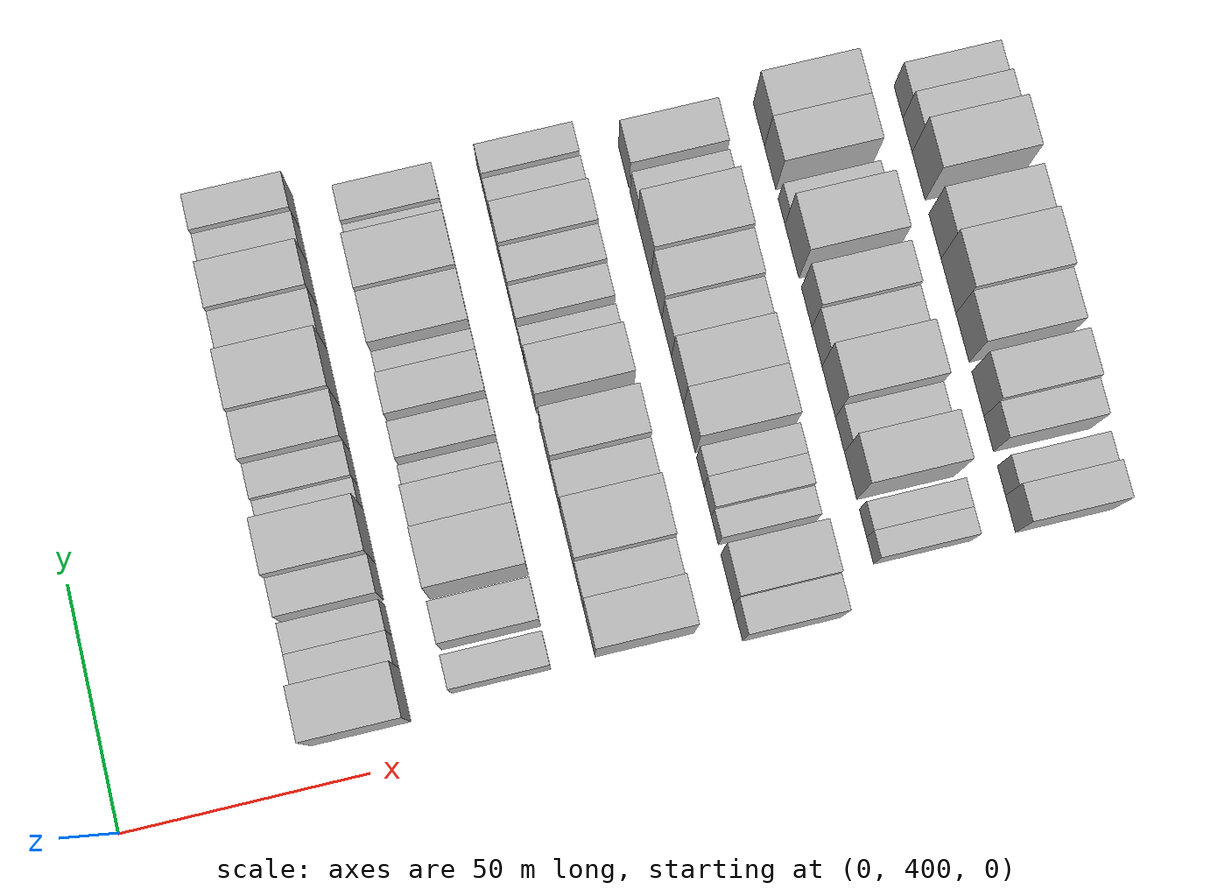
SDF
<sdf version="1.6">
 <world name="default">
  <model name="building_113">
   <static>1</static>
   <pose>50.0000 413.2900 0 0.000000 0.000000 0.000000</pose>
   <link name="link">
    <pose>0 0 12.00 0 0 0</pose>
    <collision name="collision"><geometry><box><size>20.0000 10.7970 24.0000</size></box></geometry></collision>
    <visual name="visual">
     <cast_shadows>0</cast_shadows>
     <geometry><box><size>20.0000 10.7970 24.0000</size></box></geometry>
     <material>
      <script>
       <uri>model://HANNAS_wall/materials/scripts</uri>
       <uri>model://HANNAS_wall/materials/textures</uri>
       <name>vrc/HANNAS_wall</name>
      </script>
     </material>
    </visual>
   </link>
  </model>
  <model name="building_114">
   <static>1</static>
   <pose>50.0000 421.9592 0 0.000000 0.000000 0.000000</pose>
   <link name="link">
    <pose>0 0 7.50 0 0 0</pose>
    <collision name="collision"><geometry><box><size>20.0000 6.5415 15.0000</size></box></geometry></collision>
    <visual name="visual">
     <cast_shadows>0</cast_shadows>
     <geometry><box><size>20.0000 6.5415 15.0000</size></box></geometry>
     <material>
      <script>
       <uri>model://HANNAS_wall/materials/scripts</uri>
       <uri>model://HANNAS_wall/materials/textures</uri>
       <name>vrc/HANNAS_wall</name>
      </script>
     </material>
    </visual>
   </link>
  </model>
  <model name="building_115">
   <static>1</static>
   <pose>50.0000 428.2817 0 0.000000 0.000000 0.000000</pose>
   <link name="link">
    <pose>0 0 7.50 0 0 0</pose>
    <collision name="collision"><geometry><box><size>20.0000 6.1034 15.0000</size></box></geometry></collision>
    <visual name="visual">
     <cast_shadows>0</cast_shadows>
     <geometry><box><size>20.0000 6.1034 15.0000</size></box></geometry>
     <material>
      <script>
       <uri>model://HANNAS_wall/materials/scripts</uri>
       <uri>model://HANNAS_wall/materials/textures</uri>
       <name>vrc/HANNAS_wall</name>
      </script>
     </material>
    </visual>
   </link>
  </model>
  <model name="building_116">
   <static>1</static>
   <pose>50.0000 436.1380 0 0.000000 0.000000 0.000000</pose>
   <link name="link">
    <pose>0 0 9.00 0 0 0</pose>
    <collision name="collision"><geometry><box><size>20.0000 7.6092 18.0000</size></box></geometry></collision>
    <visual name="visual">
     <cast_shadows>0</cast_shadows>
     <geometry><box><size>20.0000 7.6092 18.0000</size></box></geometry>
     <material>
      <script>
       <uri>model://HANNAS_wall/materials/scripts</uri>
       <uri>model://HANNAS_wall/materials/textures</uri>
       <name>vrc/HANNAS_wall</name>
      </script>
     </material>
    </visual>
   </link>
  </model>
  <model name="building_117">
   <static>1</static>
   <pose>50.0000 445.4954 0 0.000000 0.000000 0.000000</pose>
   <link name="link">
    <pose>0 0 12.00 0 0 0</pose>
    <collision name="collision"><geometry><box><size>20.0000 11.1056 24.0000</size></box></geometry></collision>
    <visual name="visual">
     <cast_shadows>0</cast_shadows>
     <geometry><box><size>20.0000 11.1056 24.0000</size></box></geometry>
     <material>
      <script>
       <uri>model://HANNAS_wall/materials/scripts</uri>
       <uri>model://HANNAS_wall/materials/textures</uri>
       <name>vrc/HANNAS_wall</name>
      </script>
     </material>
    </visual>
   </link>
  </model>
  <model name="building_118">
   <static>1</static>
   <pose>50.0000 453.4965 0 0.000000 0.000000 0.000000</pose>
   <link name="link">
    <pose>0 0 6.00 0 0 0</pose>
    <collision name="collision"><geometry><box><size>20.0000 4.8966 12.0000</size></box></geometry></collision>
    <visual name="visual">
     <cast_shadows>0</cast_shadows>
     <geometry><box><size>20.0000 4.8966 12.0000</size></box></geometry>
     <material>
      <script>
       <uri>model://HANNAS_wall/materials/scripts</uri>
       <uri>model://HANNAS_wall/materials/textures</uri>
       <name>vrc/HANNAS_wall</name>
      </script>
     </material>
    </visual>
   </link>
  </model>
  <model name="building_119">
   <static>1</static>
   <pose>50.0000 459.4346 0 0.000000 0.000000 0.000000</pose>
   <link name="link">
    <pose>0 0 7.50 0 0 0</pose>
    <collision name="collision"><geometry><box><size>20.0000 6.9797 15.0000</size></box></geometry></collision>
    <visual name="visual">
     <cast_shadows>0</cast_shadows>
     <geometry><box><size>20.0000 6.9797 15.0000</size></box></geometry>
     <material>
      <script>
       <uri>model://HANNAS_wall/materials/scripts</uri>
       <uri>model://HANNAS_wall/materials/textures</uri>
       <name>vrc/HANNAS_wall</name>
      </script>
     </material>
    </visual>
   </link>
  </model>
  <model name="building_120">
   <static>1</static>
   <pose>50.0000 467.6196 0 0.000000 0.000000 0.000000</pose>
   <link name="link">
    <pose>0 0 10.50 0 0 0</pose>
    <collision name="collision"><geometry><box><size>20.0000 9.3903 21.0000</size></box></geometry></collision>
    <visual name="visual">
     <cast_shadows>0</cast_shadows>
     <geometry><box><size>20.0000 9.3903 21.0000</size></box></geometry>
     <material>
      <script>
       <uri>model://HANNAS_wall/materials/scripts</uri>
       <uri>model://HANNAS_wall/materials/textures</uri>
       <name>vrc/HANNAS_wall</name>
      </script>
     </material>
    </visual>
   </link>
  </model>
  <model name="building_121">
   <static>1</static>
   <pose>50.0000 478.3112 0 0.000000 0.000000 0.000000</pose>
   <link name="link">
    <pose>0 0 12.00 0 0 0</pose>
    <collision name="collision"><geometry><box><size>20.0000 11.9928 24.0000</size></box></geometry></collision>
    <visual name="visual">
     <cast_shadows>0</cast_shadows>
     <geometry><box><size>20.0000 11.9928 24.0000</size></box></geometry>
     <material>
      <script>
       <uri>model://HANNAS_wall/materials/scripts</uri>
       <uri>model://HANNAS_wall/materials/textures</uri>
       <name>vrc/HANNAS_wall</name>
      </script>
     </material>
    </visual>
   </link>
  </model>
  <model name="building_122">
   <static>1</static>
   <pose>50.0000 488.7635 0 0.000000 0.000000 0.000000</pose>
   <link name="link">
    <pose>0 0 9.00 0 0 0</pose>
    <collision name="collision"><geometry><box><size>20.0000 8.9117 18.0000</size></box></geometry></collision>
    <visual name="visual">
     <cast_shadows>0</cast_shadows>
     <geometry><box><size>20.0000 8.9117 18.0000</size></box></geometry>
     <material>
      <script>
       <uri>model://HANNAS_wall/materials/scripts</uri>
       <uri>model://HANNAS_wall/materials/textures</uri>
       <name>vrc/HANNAS_wall</name>
      </script>
     </material>
    </visual>
   </link>
  </model>
  <model name="building_123">
   <static>1</static>
   <pose>50.0000 497.8939 0 0.000000 0.000000 0.000000</pose>
   <link name="link">
    <pose>0 0 10.50 0 0 0</pose>
    <collision name="collision"><geometry><box><size>20.0000 9.3491 21.0000</size></box></geometry></collision>
    <visual name="visual">
     <cast_shadows>0</cast_shadows>
     <geometry><box><size>20.0000 9.3491 21.0000</size></box></geometry>
     <material>
      <script>
       <uri>model://HANNAS_wall/materials/scripts</uri>
       <uri>model://HANNAS_wall/materials/textures</uri>
       <name>vrc/HANNAS_wall</name>
      </script>
     </material>
    </visual>
   </link>
  </model>
  <model name="building_124">
   <static>1</static>
   <pose>50.0000 506.1983 0 0.000000 0.000000 0.000000</pose>
   <link name="link">
    <pose>0 0 7.50 0 0 0</pose>
    <collision name="collision"><geometry><box><size>20.0000 7.2597 15.0000</size></box></geometry></collision>
    <visual name="visual">
     <cast_shadows>0</cast_shadows>
     <geometry><box><size>20.0000 7.2597 15.0000</size></box></geometry>
     <material>
      <script>
       <uri>model://HANNAS_wall/materials/scripts</uri>
       <uri>model://HANNAS_wall/materials/textures</uri>
       <name>vrc/HANNAS_wall</name>
      </script>
     </material>
    </visual>
   </link>
  </model>
  <model name="building_125">
   <static>1</static>
   <pose>50.0000 513.5144 0 0.000000 0.000000 0.000000</pose>
   <link name="link">
    <pose>0 0 9.00 0 0 0</pose>
    <collision name="collision"><geometry><box><size>20.0000 7.3724 18.0000</size></box></geometry></collision>
    <visual name="visual">
     <cast_shadows>0</cast_shadows>
     <geometry><box><size>20.0000 7.3724 18.0000</size></box></geometry>
     <material>
      <script>
       <uri>model://HANNAS_wall/materials/scripts</uri>
       <uri>model://HANNAS_wall/materials/textures</uri>
       <name>vrc/HANNAS_wall</name>
      </script>
     </material>
    </visual>
   </link>
  </model>
  <model name="building_228">
   <static>1</static>
   <pose>79.0000 414.7959 0 0.000000 0.000000 0.000000</pose>
   <link name="link">
    <pose>0 0 7.50 0 0 0</pose>
    <collision name="collision"><geometry><box><size>20.0000 6.7253 15.0000</size></box></geometry></collision>
    <visual name="visual">
     <cast_shadows>0</cast_shadows>
     <geometry><box><size>20.0000 6.7253 15.0000</size></box></geometry>
     <material>
      <script>
       <uri>model://HANNAS_wall/materials/scripts</uri>
       <uri>model://HANNAS_wall/materials/textures</uri>
       <name>vrc/HANNAS_wall</name>
      </script>
     </material>
    </visual>
   </link>
  </model>
  <model name="building_229">
   <static>1</static>
   <pose>79.0000 424.3083 0 0.000000 0.000000 0.000000</pose>
   <link name="link">
    <pose>0 0 9.00 0 0 0</pose>
    <collision name="collision"><geometry><box><size>20.0000 8.2994 18.0000</size></box></geometry></collision>
    <visual name="visual">
     <cast_shadows>0</cast_shadows>
     <geometry><box><size>20.0000 8.2994 18.0000</size></box></geometry>
     <material>
      <script>
       <uri>model://HANNAS_wall/materials/scripts</uri>
       <uri>model://HANNAS_wall/materials/textures</uri>
       <name>vrc/HANNAS_wall</name>
      </script>
     </material>
    </visual>
   </link>
  </model>
  <model name="building_230">
   <static>1</static>
   <pose>79.0000 436.4191 0 0.000000 0.000000 0.000000</pose>
   <link name="link">
    <pose>0 0 12.00 0 0 0</pose>
    <collision name="collision"><geometry><box><size>20.0000 11.9222 24.0000</size></box></geometry></collision>
    <visual name="visual">
     <cast_shadows>0</cast_shadows>
     <geometry><box><size>20.0000 11.9222 24.0000</size></box></geometry>
     <material>
      <script>
       <uri>model://HANNAS_wall/materials/scripts</uri>
       <uri>model://HANNAS_wall/materials/textures</uri>
       <name>vrc/HANNAS_wall</name>
      </script>
     </material>
    </visual>
   </link>
  </model>
  <model name="building_231">
   <static>1</static>
   <pose>79.0000 446.6484 0 0.000000 0.000000 0.000000</pose>
   <link name="link">
    <pose>0 0 10.50 0 0 0</pose>
    <collision name="collision"><geometry><box><size>20.0000 8.5364 21.0000</size></box></geometry></collision>
    <visual name="visual">
     <cast_shadows>0</cast_shadows>
     <geometry><box><size>20.0000 8.5364 21.0000</size></box></geometry>
     <material>
      <script>
       <uri>model://HANNAS_wall/materials/scripts</uri>
       <uri>model://HANNAS_wall/materials/textures</uri>
       <name>vrc/HANNAS_wall</name>
      </script>
     </material>
    </visual>
   </link>
  </model>
  <model name="building_232">
   <static>1</static>
   <pose>79.0000 453.5274 0 0.000000 0.000000 0.000000</pose>
   <link name="link">
    <pose>0 0 6.00 0 0 0</pose>
    <collision name="collision"><geometry><box><size>20.0000 5.2216 12.0000</size></box></geometry></collision>
    <visual name="visual">
     <cast_shadows>0</cast_shadows>
     <geometry><box><size>20.0000 5.2216 12.0000</size></box></geometry>
     <material>
      <script>
       <uri>model://HANNAS_wall/materials/scripts</uri>
       <uri>model://HANNAS_wall/materials/textures</uri>
       <name>vrc/HANNAS_wall</name>
      </script>
     </material>
    </visual>
   </link>
  </model>
  <model name="building_233">
   <static>1</static>
   <pose>79.0000 460.8180 0 0.000000 0.000000 0.000000</pose>
   <link name="link">
    <pose>0 0 7.50 0 0 0</pose>
    <collision name="collision"><geometry><box><size>20.0000 7.3597 15.0000</size></box></geometry></collision>
    <visual name="visual">
     <cast_shadows>0</cast_shadows>
     <geometry><box><size>20.0000 7.3597 15.0000</size></box></geometry>
     <material>
      <script>
       <uri>model://HANNAS_wall/materials/scripts</uri>
       <uri>model://HANNAS_wall/materials/textures</uri>
       <name>vrc/HANNAS_wall</name>
      </script>
     </material>
    </visual>
   </link>
  </model>
  <model name="building_234">
   <static>1</static>
   <pose>79.0000 469.6686 0 0.000000 0.000000 0.000000</pose>
   <link name="link">
    <pose>0 0 9.00 0 0 0</pose>
    <collision name="collision"><geometry><box><size>20.0000 8.3415 18.0000</size></box></geometry></collision>
    <visual name="visual">
     <cast_shadows>0</cast_shadows>
     <geometry><box><size>20.0000 8.3415 18.0000</size></box></geometry>
     <material>
      <script>
       <uri>model://HANNAS_wall/materials/scripts</uri>
       <uri>model://HANNAS_wall/materials/textures</uri>
       <name>vrc/HANNAS_wall</name>
      </script>
     </material>
    </visual>
   </link>
  </model>
  <model name="building_235">
   <static>1</static>
   <pose>79.0000 476.5497 0 0.000000 0.000000 0.000000</pose>
   <link name="link">
    <pose>0 0 6.00 0 0 0</pose>
    <collision name="collision"><geometry><box><size>20.0000 5.4208 12.0000</size></box></geometry></collision>
    <visual name="visual">
     <cast_shadows>0</cast_shadows>
     <geometry><box><size>20.0000 5.4208 12.0000</size></box></geometry>
     <material>
      <script>
       <uri>model://HANNAS_wall/materials/scripts</uri>
       <uri>model://HANNAS_wall/materials/textures</uri>
       <name>vrc/HANNAS_wall</name>
      </script>
     </material>
    </visual>
   </link>
  </model>
  <model name="building_236">
   <static>1</static>
   <pose>79.0000 484.4277 0 0.000000 0.000000 0.000000</pose>
   <link name="link">
    <pose>0 0 10.50 0 0 0</pose>
    <collision name="collision"><geometry><box><size>20.0000 10.3351 21.0000</size></box></geometry></collision>
    <visual name="visual">
     <cast_shadows>0</cast_shadows>
     <geometry><box><size>20.0000 10.3351 21.0000</size></box></geometry>
     <material>
      <script>
       <uri>model://HANNAS_wall/materials/scripts</uri>
       <uri>model://HANNAS_wall/materials/textures</uri>
       <name>vrc/HANNAS_wall</name>
      </script>
     </material>
    </visual>
   </link>
  </model>
  <model name="building_237">
   <static>1</static>
   <pose>79.0000 495.1447 0 0.000000 0.000000 0.000000</pose>
   <link name="link">
    <pose>0 0 12.00 0 0 0</pose>
    <collision name="collision"><geometry><box><size>20.0000 11.0989 24.0000</size></box></geometry></collision>
    <visual name="visual">
     <cast_shadows>0</cast_shadows>
     <geometry><box><size>20.0000 11.0989 24.0000</size></box></geometry>
     <material>
      <script>
       <uri>model://HANNAS_wall/materials/scripts</uri>
       <uri>model://HANNAS_wall/materials/textures</uri>
       <name>vrc/HANNAS_wall</name>
      </script>
     </material>
    </visual>
   </link>
  </model>
  <model name="building_238">
   <static>1</static>
   <pose>79.0000 503.1318 0 0.000000 0.000000 0.000000</pose>
   <link name="link">
    <pose>0 0 6.00 0 0 0</pose>
    <collision name="collision"><geometry><box><size>20.0000 4.8752 12.0000</size></box></geometry></collision>
    <visual name="visual">
     <cast_shadows>0</cast_shadows>
     <geometry><box><size>20.0000 4.8752 12.0000</size></box></geometry>
     <material>
      <script>
       <uri>model://HANNAS_wall/materials/scripts</uri>
       <uri>model://HANNAS_wall/materials/textures</uri>
       <name>vrc/HANNAS_wall</name>
      </script>
     </material>
    </visual>
   </link>
  </model>
  <model name="building_239">
   <static>1</static>
   <pose>79.0000 509.2784 0 0.000000 0.000000 0.000000</pose>
   <link name="link">
    <pose>0 0 7.50 0 0 0</pose>
    <collision name="collision"><geometry><box><size>20.0000 7.4180 15.0000</size></box></geometry></collision>
    <visual name="visual">
     <cast_shadows>0</cast_shadows>
     <geometry><box><size>20.0000 7.4180 15.0000</size></box></geometry>
     <material>
      <script>
       <uri>model://HANNAS_wall/materials/scripts</uri>
       <uri>model://HANNAS_wall/materials/textures</uri>
       <name>vrc/HANNAS_wall</name>
      </script>
     </material>
    </visual>
   </link>
  </model>
  <model name="building_337">
   <static>1</static>
   <pose>108.0000 416.6775 0 0.000000 0.000000 0.000000</pose>
   <link name="link">
    <pose>0 0 12.00 0 0 0</pose>
    <collision name="collision"><geometry><box><size>20.0000 9.8321 24.0000</size></box></geometry></collision>
    <visual name="visual">
     <cast_shadows>0</cast_shadows>
     <geometry><box><size>20.0000 9.8321 24.0000</size></box></geometry>
     <material>
      <script>
       <uri>model://HANNAS_wall/materials/scripts</uri>
       <uri>model://HANNAS_wall/materials/textures</uri>
       <name>vrc/HANNAS_wall</name>
      </script>
     </material>
    </visual>
   </link>
  </model>
  <model name="building_338">
   <static>1</static>
   <pose>108.0000 425.4409 0 0.000000 0.000000 0.000000</pose>
   <link name="link">
    <pose>0 0 9.00 0 0 0</pose>
    <collision name="collision"><geometry><box><size>20.0000 7.6947 18.0000</size></box></geometry></collision>
    <visual name="visual">
     <cast_shadows>0</cast_shadows>
     <geometry><box><size>20.0000 7.6947 18.0000</size></box></geometry>
     <material>
      <script>
       <uri>model://HANNAS_wall/materials/scripts</uri>
       <uri>model://HANNAS_wall/materials/textures</uri>
       <name>vrc/HANNAS_wall</name>
      </script>
     </material>
    </visual>
   </link>
  </model>
  <model name="building_339">
   <static>1</static>
   <pose>108.0000 435.2289 0 0.000000 0.000000 0.000000</pose>
   <link name="link">
    <pose>0 0 12.00 0 0 0</pose>
    <collision name="collision"><geometry><box><size>20.0000 11.8812 24.0000</size></box></geometry></collision>
    <visual name="visual">
     <cast_shadows>0</cast_shadows>
     <geometry><box><size>20.0000 11.8812 24.0000</size></box></geometry>
     <material>
      <script>
       <uri>model://HANNAS_wall/materials/scripts</uri>
       <uri>model://HANNAS_wall/materials/textures</uri>
       <name>vrc/HANNAS_wall</name>
      </script>
     </material>
    </visual>
   </link>
  </model>
  <model name="building_340">
   <static>1</static>
   <pose>108.0000 445.1826 0 0.000000 0.000000 0.000000</pose>
   <link name="link">
    <pose>0 0 9.00 0 0 0</pose>
    <collision name="collision"><geometry><box><size>20.0000 8.0263 18.0000</size></box></geometry></collision>
    <visual name="visual">
     <cast_shadows>0</cast_shadows>
     <geometry><box><size>20.0000 8.0263 18.0000</size></box></geometry>
     <material>
      <script>
       <uri>model://HANNAS_wall/materials/scripts</uri>
       <uri>model://HANNAS_wall/materials/textures</uri>
       <name>vrc/HANNAS_wall</name>
      </script>
     </material>
    </visual>
   </link>
  </model>
  <model name="building_341">
   <static>1</static>
   <pose>108.0000 454.0585 0 0.000000 0.000000 0.000000</pose>
   <link name="link">
    <pose>0 0 12.00 0 0 0</pose>
    <collision name="collision"><geometry><box><size>20.0000 9.7256 24.0000</size></box></geometry></collision>
    <visual name="visual">
     <cast_shadows>0</cast_shadows>
     <geometry><box><size>20.0000 9.7256 24.0000</size></box></geometry>
     <material>
      <script>
       <uri>model://HANNAS_wall/materials/scripts</uri>
       <uri>model://HANNAS_wall/materials/textures</uri>
       <name>vrc/HANNAS_wall</name>
      </script>
     </material>
    </visual>
   </link>
  </model>
  <model name="building_342">
   <static>1</static>
   <pose>108.0000 466.8305 0 0.000000 0.000000 0.000000</pose>
   <link name="link">
    <pose>0 0 10.50 0 0 0</pose>
    <collision name="collision"><geometry><box><size>20.0000 9.8184 21.0000</size></box></geometry></collision>
    <visual name="visual">
     <cast_shadows>0</cast_shadows>
     <geometry><box><size>20.0000 9.8184 21.0000</size></box></geometry>
     <material>
      <script>
       <uri>model://HANNAS_wall/materials/scripts</uri>
       <uri>model://HANNAS_wall/materials/textures</uri>
       <name>vrc/HANNAS_wall</name>
      </script>
     </material>
    </visual>
   </link>
  </model>
  <model name="building_343">
   <static>1</static>
   <pose>108.0000 474.5836 0 0.000000 0.000000 0.000000</pose>
   <link name="link">
    <pose>0 0 6.00 0 0 0</pose>
    <collision name="collision"><geometry><box><size>20.0000 5.6878 12.0000</size></box></geometry></collision>
    <visual name="visual">
     <cast_shadows>0</cast_shadows>
     <geometry><box><size>20.0000 5.6878 12.0000</size></box></geometry>
     <material>
      <script>
       <uri>model://HANNAS_wall/materials/scripts</uri>
       <uri>model://HANNAS_wall/materials/textures</uri>
       <name>vrc/HANNAS_wall</name>
      </script>
     </material>
    </visual>
   </link>
  </model>
  <model name="building_344">
   <static>1</static>
   <pose>108.0000 481.8121 0 0.000000 0.000000 0.000000</pose>
   <link name="link">
    <pose>0 0 7.50 0 0 0</pose>
    <collision name="collision"><geometry><box><size>20.0000 6.7691 15.0000</size></box></geometry></collision>
    <visual name="visual">
     <cast_shadows>0</cast_shadows>
     <geometry><box><size>20.0000 6.7691 15.0000</size></box></geometry>
     <material>
      <script>
       <uri>model://HANNAS_wall/materials/scripts</uri>
       <uri>model://HANNAS_wall/materials/textures</uri>
       <name>vrc/HANNAS_wall</name>
      </script>
     </material>
    </visual>
   </link>
  </model>
  <model name="building_345">
   <static>1</static>
   <pose>108.0000 488.8529 0 0.000000 0.000000 0.000000</pose>
   <link name="link">
    <pose>0 0 9.00 0 0 0</pose>
    <collision name="collision"><geometry><box><size>20.0000 7.3127 18.0000</size></box></geometry></collision>
    <visual name="visual">
     <cast_shadows>0</cast_shadows>
     <geometry><box><size>20.0000 7.3127 18.0000</size></box></geometry>
     <material>
      <script>
       <uri>model://HANNAS_wall/materials/scripts</uri>
       <uri>model://HANNAS_wall/materials/textures</uri>
       <name>vrc/HANNAS_wall</name>
      </script>
     </material>
    </visual>
   </link>
  </model>
  <model name="building_346">
   <static>1</static>
   <pose>108.0000 496.7511 0 0.000000 0.000000 0.000000</pose>
   <link name="link">
    <pose>0 0 10.50 0 0 0</pose>
    <collision name="collision"><geometry><box><size>20.0000 8.4837 21.0000</size></box></geometry></collision>
    <visual name="visual">
     <cast_shadows>0</cast_shadows>
     <geometry><box><size>20.0000 8.4837 21.0000</size></box></geometry>
     <material>
      <script>
       <uri>model://HANNAS_wall/materials/scripts</uri>
       <uri>model://HANNAS_wall/materials/textures</uri>
       <name>vrc/HANNAS_wall</name>
      </script>
     </material>
    </visual>
   </link>
  </model>
  <model name="building_347">
   <static>1</static>
   <pose>108.0000 504.2078 0 0.000000 0.000000 0.000000</pose>
   <link name="link">
    <pose>0 0 7.50 0 0 0</pose>
    <collision name="collision"><geometry><box><size>20.0000 6.4296 15.0000</size></box></geometry></collision>
    <visual name="visual">
     <cast_shadows>0</cast_shadows>
     <geometry><box><size>20.0000 6.4296 15.0000</size></box></geometry>
     <material>
      <script>
       <uri>model://HANNAS_wall/materials/scripts</uri>
       <uri>model://HANNAS_wall/materials/textures</uri>
       <name>vrc/HANNAS_wall</name>
      </script>
     </material>
    </visual>
   </link>
  </model>
  <model name="building_348">
   <static>1</static>
   <pose>108.0000 511.5027 0 0.000000 0.000000 0.000000</pose>
   <link name="link">
    <pose>0 0 7.50 0 0 0</pose>
    <collision name="collision"><geometry><box><size>20.0000 6.1602 15.0000</size></box></geometry></collision>
    <visual name="visual">
     <cast_shadows>0</cast_shadows>
     <geometry><box><size>20.0000 6.1602 15.0000</size></box></geometry>
     <material>
      <script>
       <uri>model://HANNAS_wall/materials/scripts</uri>
       <uri>model://HANNAS_wall/materials/textures</uri>
       <name>vrc/HANNAS_wall</name>
      </script>
     </material>
    </visual>
   </link>
  </model>
  <model name="building_448">
   <static>1</static>
   <pose>137.0000 411.6410 0 0.000000 0.000000 0.000000</pose>
   <link name="link">
    <pose>0 0 9.00 0 0 0</pose>
    <collision name="collision"><geometry><box><size>20.0000 7.2707 18.0000</size></box></geometry></collision>
    <visual name="visual">
     <cast_shadows>0</cast_shadows>
     <geometry><box><size>20.0000 7.2707 18.0000</size></box></geometry>
     <material>
      <script>
       <uri>model://HANNAS_wall/materials/scripts</uri>
       <uri>model://HANNAS_wall/materials/textures</uri>
       <name>vrc/HANNAS_wall</name>
      </script>
     </material>
    </visual>
   </link>
  </model>
  <model name="building_449">
   <static>1</static>
   <pose>137.0000 420.4573 0 0.000000 0.000000 0.000000</pose>
   <link name="link">
    <pose>0 0 10.50 0 0 0</pose>
    <collision name="collision"><geometry><box><size>20.0000 10.3619 21.0000</size></box></geometry></collision>
    <visual name="visual">
     <cast_shadows>0</cast_shadows>
     <geometry><box><size>20.0000 10.3619 21.0000</size></box></geometry>
     <material>
      <script>
       <uri>model://HANNAS_wall/materials/scripts</uri>
       <uri>model://HANNAS_wall/materials/textures</uri>
       <name>vrc/HANNAS_wall</name>
      </script>
     </material>
    </visual>
   </link>
  </model>
  <model name="building_450">
   <static>1</static>
   <pose>137.0000 430.5157 0 0.000000 0.000000 0.000000</pose>
   <link name="link">
    <pose>0 0 6.00 0 0 0</pose>
    <collision name="collision"><geometry><box><size>20.0000 5.7548 12.0000</size></box></geometry></collision>
    <visual name="visual">
     <cast_shadows>0</cast_shadows>
     <geometry><box><size>20.0000 5.7548 12.0000</size></box></geometry>
     <material>
      <script>
       <uri>model://HANNAS_wall/materials/scripts</uri>
       <uri>model://HANNAS_wall/materials/textures</uri>
       <name>vrc/HANNAS_wall</name>
      </script>
     </material>
    </visual>
   </link>
  </model>
  <model name="building_451">
   <static>1</static>
   <pose>137.0000 436.4619 0 0.000000 0.000000 0.000000</pose>
   <link name="link">
    <pose>0 0 7.50 0 0 0</pose>
    <collision name="collision"><geometry><box><size>20.0000 6.1376 15.0000</size></box></geometry></collision>
    <visual name="visual">
     <cast_shadows>0</cast_shadows>
     <geometry><box><size>20.0000 6.1376 15.0000</size></box></geometry>
     <material>
      <script>
       <uri>model://HANNAS_wall/materials/scripts</uri>
       <uri>model://HANNAS_wall/materials/textures</uri>
       <name>vrc/HANNAS_wall</name>
      </script>
     </material>
    </visual>
   </link>
  </model>
  <model name="building_452">
   <static>1</static>
   <pose>137.0000 442.5639 0 0.000000 0.000000 0.000000</pose>
   <link name="link">
    <pose>0 0 7.50 0 0 0</pose>
    <collision name="collision"><geometry><box><size>20.0000 6.0665 15.0000</size></box></geometry></collision>
    <visual name="visual">
     <cast_shadows>0</cast_shadows>
     <geometry><box><size>20.0000 6.0665 15.0000</size></box></geometry>
     <material>
      <script>
       <uri>model://HANNAS_wall/materials/scripts</uri>
       <uri>model://HANNAS_wall/materials/textures</uri>
       <name>vrc/HANNAS_wall</name>
      </script>
     </material>
    </visual>
   </link>
  </model>
  <model name="building_453">
   <static>1</static>
   <pose>137.0000 451.5457 0 0.000000 0.000000 0.000000</pose>
   <link name="link">
    <pose>0 0 10.50 0 0 0</pose>
    <collision name="collision"><geometry><box><size>20.0000 9.8969 21.0000</size></box></geometry></collision>
    <visual name="visual">
     <cast_shadows>0</cast_shadows>
     <geometry><box><size>20.0000 9.8969 21.0000</size></box></geometry>
     <material>
      <script>
       <uri>model://HANNAS_wall/materials/scripts</uri>
       <uri>model://HANNAS_wall/materials/textures</uri>
       <name>vrc/HANNAS_wall</name>
      </script>
     </material>
    </visual>
   </link>
  </model>
  <model name="building_454">
   <static>1</static>
   <pose>137.0000 461.5761 0 0.000000 0.000000 0.000000</pose>
   <link name="link">
    <pose>0 0 10.50 0 0 0</pose>
    <collision name="collision"><geometry><box><size>20.0000 10.1639 21.0000</size></box></geometry></collision>
    <visual name="visual">
     <cast_shadows>0</cast_shadows>
     <geometry><box><size>20.0000 10.1639 21.0000</size></box></geometry>
     <material>
      <script>
       <uri>model://HANNAS_wall/materials/scripts</uri>
       <uri>model://HANNAS_wall/materials/textures</uri>
       <name>vrc/HANNAS_wall</name>
      </script>
     </material>
    </visual>
   </link>
  </model>
  <model name="building_455">
   <static>1</static>
   <pose>137.0000 470.6859 0 0.000000 0.000000 0.000000</pose>
   <link name="link">
    <pose>0 0 9.00 0 0 0</pose>
    <collision name="collision"><geometry><box><size>20.0000 8.0557 18.0000</size></box></geometry></collision>
    <visual name="visual">
     <cast_shadows>0</cast_shadows>
     <geometry><box><size>20.0000 8.0557 18.0000</size></box></geometry>
     <material>
      <script>
       <uri>model://HANNAS_wall/materials/scripts</uri>
       <uri>model://HANNAS_wall/materials/textures</uri>
       <name>vrc/HANNAS_wall</name>
      </script>
     </material>
    </visual>
   </link>
  </model>
  <model name="building_456">
   <static>1</static>
   <pose>137.0000 479.3067 0 0.000000 0.000000 0.000000</pose>
   <link name="link">
    <pose>0 0 10.50 0 0 0</pose>
    <collision name="collision"><geometry><box><size>20.0000 9.1860 21.0000</size></box></geometry></collision>
    <visual name="visual">
     <cast_shadows>0</cast_shadows>
     <geometry><box><size>20.0000 9.1860 21.0000</size></box></geometry>
     <material>
      <script>
       <uri>model://HANNAS_wall/materials/scripts</uri>
       <uri>model://HANNAS_wall/materials/textures</uri>
       <name>vrc/HANNAS_wall</name>
      </script>
     </material>
    </visual>
   </link>
  </model>
  <model name="building_457">
   <static>1</static>
   <pose>137.0000 489.7451 0 0.000000 0.000000 0.000000</pose>
   <link name="link">
    <pose>0 0 12.00 0 0 0</pose>
    <collision name="collision"><geometry><box><size>20.0000 11.6907 24.0000</size></box></geometry></collision>
    <visual name="visual">
     <cast_shadows>0</cast_shadows>
     <geometry><box><size>20.0000 11.6907 24.0000</size></box></geometry>
     <material>
      <script>
       <uri>model://HANNAS_wall/materials/scripts</uri>
       <uri>model://HANNAS_wall/materials/textures</uri>
       <name>vrc/HANNAS_wall</name>
      </script>
     </material>
    </visual>
   </link>
  </model>
  <model name="building_458">
   <static>1</static>
   <pose>137.0000 498.6995 0 0.000000 0.000000 0.000000</pose>
   <link name="link">
    <pose>0 0 7.50 0 0 0</pose>
    <collision name="collision"><geometry><box><size>20.0000 6.2181 15.0000</size></box></geometry></collision>
    <visual name="visual">
     <cast_shadows>0</cast_shadows>
     <geometry><box><size>20.0000 6.2181 15.0000</size></box></geometry>
     <material>
      <script>
       <uri>model://HANNAS_wall/materials/scripts</uri>
       <uri>model://HANNAS_wall/materials/textures</uri>
       <name>vrc/HANNAS_wall</name>
      </script>
     </material>
    </visual>
   </link>
  </model>
  <model name="building_459">
   <static>1</static>
   <pose>137.0000 507.2692 0 0.000000 0.000000 0.000000</pose>
   <link name="link">
    <pose>0 0 9.00 0 0 0</pose>
    <collision name="collision"><geometry><box><size>20.0000 8.9213 18.0000</size></box></geometry></collision>
    <visual name="visual">
     <cast_shadows>0</cast_shadows>
     <geometry><box><size>20.0000 8.9213 18.0000</size></box></geometry>
     <material>
      <script>
       <uri>model://HANNAS_wall/materials/scripts</uri>
       <uri>model://HANNAS_wall/materials/textures</uri>
       <name>vrc/HANNAS_wall</name>
      </script>
     </material>
    </visual>
   </link>
  </model>
  <model name="building_563">
   <static>1</static>
   <pose>166.0000 419.4444 0 0.000000 0.000000 0.000000</pose>
   <link name="link">
    <pose>0 0 6.00 0 0 0</pose>
    <collision name="collision"><geometry><box><size>20.0000 5.4688 12.0000</size></box></geometry></collision>
    <visual name="visual">
     <cast_shadows>0</cast_shadows>
     <geometry><box><size>20.0000 5.4688 12.0000</size></box></geometry>
     <material>
      <script>
       <uri>model://HANNAS_wall/materials/scripts</uri>
       <uri>model://HANNAS_wall/materials/textures</uri>
       <name>vrc/HANNAS_wall</name>
      </script>
     </material>
    </visual>
   </link>
  </model>
  <model name="building_564">
   <static>1</static>
   <pose>166.0000 425.0772 0 0.000000 0.000000 0.000000</pose>
   <link name="link">
    <pose>0 0 6.00 0 0 0</pose>
    <collision name="collision"><geometry><box><size>20.0000 5.7969 12.0000</size></box></geometry></collision>
    <visual name="visual">
     <cast_shadows>0</cast_shadows>
     <geometry><box><size>20.0000 5.7969 12.0000</size></box></geometry>
     <material>
      <script>
       <uri>model://HANNAS_wall/materials/scripts</uri>
       <uri>model://HANNAS_wall/materials/textures</uri>
       <name>vrc/HANNAS_wall</name>
      </script>
     </material>
    </visual>
   </link>
  </model>
  <model name="building_565">
   <static>1</static>
   <pose>166.0000 434.8629 0 0.000000 0.000000 0.000000</pose>
   <link name="link">
    <pose>0 0 12.00 0 0 0</pose>
    <collision name="collision"><geometry><box><size>20.0000 9.7745 24.0000</size></box></geometry></collision>
    <visual name="visual">
     <cast_shadows>0</cast_shadows>
     <geometry><box><size>20.0000 9.7745 24.0000</size></box></geometry>
     <material>
      <script>
       <uri>model://HANNAS_wall/materials/scripts</uri>
       <uri>model://HANNAS_wall/materials/textures</uri>
       <name>vrc/HANNAS_wall</name>
      </script>
     </material>
    </visual>
   </link>
  </model>
  <model name="building_566">
   <static>1</static>
   <pose>166.0000 443.3462 0 0.000000 0.000000 0.000000</pose>
   <link name="link">
    <pose>0 0 7.50 0 0 0</pose>
    <collision name="collision"><geometry><box><size>20.0000 7.1920 15.0000</size></box></geometry></collision>
    <visual name="visual">
     <cast_shadows>0</cast_shadows>
     <geometry><box><size>20.0000 7.1920 15.0000</size></box></geometry>
     <material>
      <script>
       <uri>model://HANNAS_wall/materials/scripts</uri>
       <uri>model://HANNAS_wall/materials/textures</uri>
       <name>vrc/HANNAS_wall</name>
      </script>
     </material>
    </visual>
   </link>
  </model>
  <model name="building_567">
   <static>1</static>
   <pose>166.0000 452.3404 0 0.000000 0.000000 0.000000</pose>
   <link name="link">
    <pose>0 0 12.00 0 0 0</pose>
    <collision name="collision"><geometry><box><size>20.0000 10.7965 24.0000</size></box></geometry></collision>
    <visual name="visual">
     <cast_shadows>0</cast_shadows>
     <geometry><box><size>20.0000 10.7965 24.0000</size></box></geometry>
     <material>
      <script>
       <uri>model://HANNAS_wall/materials/scripts</uri>
       <uri>model://HANNAS_wall/materials/textures</uri>
       <name>vrc/HANNAS_wall</name>
      </script>
     </material>
    </visual>
   </link>
  </model>
  <model name="building_568">
   <static>1</static>
   <pose>166.0000 461.8528 0 0.000000 0.000000 0.000000</pose>
   <link name="link">
    <pose>0 0 9.00 0 0 0</pose>
    <collision name="collision"><geometry><box><size>20.0000 8.2283 18.0000</size></box></geometry></collision>
    <visual name="visual">
     <cast_shadows>0</cast_shadows>
     <geometry><box><size>20.0000 8.2283 18.0000</size></box></geometry>
     <material>
      <script>
       <uri>model://HANNAS_wall/materials/scripts</uri>
       <uri>model://HANNAS_wall/materials/textures</uri>
       <name>vrc/HANNAS_wall</name>
      </script>
     </material>
    </visual>
   </link>
  </model>
  <model name="building_569">
   <static>1</static>
   <pose>166.0000 470.1811 0 0.000000 0.000000 0.000000</pose>
   <link name="link">
    <pose>0 0 10.50 0 0 0</pose>
    <collision name="collision"><geometry><box><size>20.0000 8.4282 21.0000</size></box></geometry></collision>
    <visual name="visual">
     <cast_shadows>0</cast_shadows>
     <geometry><box><size>20.0000 8.4282 21.0000</size></box></geometry>
     <material>
      <script>
       <uri>model://HANNAS_wall/materials/scripts</uri>
       <uri>model://HANNAS_wall/materials/textures</uri>
       <name>vrc/HANNAS_wall</name>
      </script>
     </material>
    </visual>
   </link>
  </model>
  <model name="building_570">
   <static>1</static>
   <pose>166.0000 482.1438 0 0.000000 0.000000 0.000000</pose>
   <link name="link">
    <pose>0 0 12.00 0 0 0</pose>
    <collision name="collision"><geometry><box><size>20.0000 11.4972 24.0000</size></box></geometry></collision>
    <visual name="visual">
     <cast_shadows>0</cast_shadows>
     <geometry><box><size>20.0000 11.4972 24.0000</size></box></geometry>
     <material>
      <script>
       <uri>model://HANNAS_wall/materials/scripts</uri>
       <uri>model://HANNAS_wall/materials/textures</uri>
       <name>vrc/HANNAS_wall</name>
      </script>
     </material>
    </visual>
   </link>
  </model>
  <model name="building_571">
   <static>1</static>
   <pose>166.0000 490.6447 0 0.000000 0.000000 0.000000</pose>
   <link name="link">
    <pose>0 0 6.00 0 0 0</pose>
    <collision name="collision"><geometry><box><size>20.0000 5.5046 12.0000</size></box></geometry></collision>
    <visual name="visual">
     <cast_shadows>0</cast_shadows>
     <geometry><box><size>20.0000 5.5046 12.0000</size></box></geometry>
     <material>
      <script>
       <uri>model://HANNAS_wall/materials/scripts</uri>
       <uri>model://HANNAS_wall/materials/textures</uri>
       <name>vrc/HANNAS_wall</name>
      </script>
     </material>
    </visual>
   </link>
  </model>
  <model name="building_572">
   <static>1</static>
   <pose>166.0000 500.0700 0 0.000000 0.000000 0.000000</pose>
   <link name="link">
    <pose>0 0 10.50 0 0 0</pose>
    <collision name="collision"><geometry><box><size>20.0000 9.3461 21.0000</size></box></geometry></collision>
    <visual name="visual">
     <cast_shadows>0</cast_shadows>
     <geometry><box><size>20.0000 9.3461 21.0000</size></box></geometry>
     <material>
      <script>
       <uri>model://HANNAS_wall/materials/scripts</uri>
       <uri>model://HANNAS_wall/materials/textures</uri>
       <name>vrc/HANNAS_wall</name>
      </script>
     </material>
    </visual>
   </link>
  </model>
  <model name="building_573">
   <static>1</static>
   <pose>166.0000 509.4181 0 0.000000 0.000000 0.000000</pose>
   <link name="link">
    <pose>0 0 10.50 0 0 0</pose>
    <collision name="collision"><geometry><box><size>20.0000 9.3502 21.0000</size></box></geometry></collision>
    <visual name="visual">
     <cast_shadows>0</cast_shadows>
     <geometry><box><size>20.0000 9.3502 21.0000</size></box></geometry>
     <material>
      <script>
       <uri>model://HANNAS_wall/materials/scripts</uri>
       <uri>model://HANNAS_wall/materials/textures</uri>
       <name>vrc/HANNAS_wall</name>
      </script>
     </material>
    </visual>
   </link>
  </model>
  <model name="building_682">
   <static>1</static>
   <pose>195.0000 420.0162 0 0.000000 0.000000 0.000000</pose>
   <link name="link">
    <pose>0 0 9.00 0 0 0</pose>
    <collision name="collision"><geometry><box><size>20.0000 7.5950 18.0000</size></box></geometry></collision>
    <visual name="visual">
     <cast_shadows>0</cast_shadows>
     <geometry><box><size>20.0000 7.5950 18.0000</size></box></geometry>
     <material>
      <script>
       <uri>model://HANNAS_wall/materials/scripts</uri>
       <uri>model://HANNAS_wall/materials/textures</uri>
       <name>vrc/HANNAS_wall</name>
      </script>
     </material>
    </visual>
   </link>
  </model>
  <model name="building_683">
   <static>1</static>
   <pose>195.0000 426.8710 0 0.000000 0.000000 0.000000</pose>
   <link name="link">
    <pose>0 0 7.50 0 0 0</pose>
    <collision name="collision"><geometry><box><size>20.0000 6.1147 15.0000</size></box></geometry></collision>
    <visual name="visual">
     <cast_shadows>0</cast_shadows>
     <geometry><box><size>20.0000 6.1147 15.0000</size></box></geometry>
     <material>
      <script>
       <uri>model://HANNAS_wall/materials/scripts</uri>
       <uri>model://HANNAS_wall/materials/textures</uri>
       <name>vrc/HANNAS_wall</name>
      </script>
     </material>
    </visual>
   </link>
  </model>
  <model name="building_684">
   <static>1</static>
   <pose>195.0000 436.5838 0 0.000000 0.000000 0.000000</pose>
   <link name="link">
    <pose>0 0 9.00 0 0 0</pose>
    <collision name="collision"><geometry><box><size>20.0000 7.3110 18.0000</size></box></geometry></collision>
    <visual name="visual">
     <cast_shadows>0</cast_shadows>
     <geometry><box><size>20.0000 7.3110 18.0000</size></box></geometry>
     <material>
      <script>
       <uri>model://HANNAS_wall/materials/scripts</uri>
       <uri>model://HANNAS_wall/materials/textures</uri>
       <name>vrc/HANNAS_wall</name>
      </script>
     </material>
    </visual>
   </link>
  </model>
  <model name="building_685">
   <static>1</static>
   <pose>195.0000 444.9422 0 0.000000 0.000000 0.000000</pose>
   <link name="link">
    <pose>0 0 10.50 0 0 0</pose>
    <collision name="collision"><geometry><box><size>20.0000 9.4058 21.0000</size></box></geometry></collision>
    <visual name="visual">
     <cast_shadows>0</cast_shadows>
     <geometry><box><size>20.0000 9.4058 21.0000</size></box></geometry>
     <material>
      <script>
       <uri>model://HANNAS_wall/materials/scripts</uri>
       <uri>model://HANNAS_wall/materials/textures</uri>
       <name>vrc/HANNAS_wall</name>
      </script>
     </material>
    </visual>
   </link>
  </model>
  <model name="building_686">
   <static>1</static>
   <pose>195.0000 456.7896 0 0.000000 0.000000 0.000000</pose>
   <link name="link">
    <pose>0 0 10.50 0 0 0</pose>
    <collision name="collision"><geometry><box><size>20.0000 10.2890 21.0000</size></box></geometry></collision>
    <visual name="visual">
     <cast_shadows>0</cast_shadows>
     <geometry><box><size>20.0000 10.2890 21.0000</size></box></geometry>
     <material>
      <script>
       <uri>model://HANNAS_wall/materials/scripts</uri>
       <uri>model://HANNAS_wall/materials/textures</uri>
       <name>vrc/HANNAS_wall</name>
      </script>
     </material>
    </visual>
   </link>
  </model>
  <model name="building_687">
   <static>1</static>
   <pose>195.0000 467.7608 0 0.000000 0.000000 0.000000</pose>
   <link name="link">
    <pose>0 0 12.00 0 0 0</pose>
    <collision name="collision"><geometry><box><size>20.0000 11.6536 24.0000</size></box></geometry></collision>
    <visual name="visual">
     <cast_shadows>0</cast_shadows>
     <geometry><box><size>20.0000 11.6536 24.0000</size></box></geometry>
     <material>
      <script>
       <uri>model://HANNAS_wall/materials/scripts</uri>
       <uri>model://HANNAS_wall/materials/textures</uri>
       <name>vrc/HANNAS_wall</name>
      </script>
     </material>
    </visual>
   </link>
  </model>
  <model name="building_688">
   <static>1</static>
   <pose>195.0000 478.3805 0 0.000000 0.000000 0.000000</pose>
   <link name="link">
    <pose>0 0 10.50 0 0 0</pose>
    <collision name="collision"><geometry><box><size>20.0000 9.5857 21.0000</size></box></geometry></collision>
    <visual name="visual">
     <cast_shadows>0</cast_shadows>
     <geometry><box><size>20.0000 9.5857 21.0000</size></box></geometry>
     <material>
      <script>
       <uri>model://HANNAS_wall/materials/scripts</uri>
       <uri>model://HANNAS_wall/materials/textures</uri>
       <name>vrc/HANNAS_wall</name>
      </script>
     </material>
    </visual>
   </link>
  </model>
  <model name="building_689">
   <static>1</static>
   <pose>195.0000 491.3574 0 0.000000 0.000000 0.000000</pose>
   <link name="link">
    <pose>0 0 12.00 0 0 0</pose>
    <collision name="collision"><geometry><box><size>20.0000 10.3682 24.0000</size></box></geometry></collision>
    <visual name="visual">
     <cast_shadows>0</cast_shadows>
     <geometry><box><size>20.0000 10.3682 24.0000</size></box></geometry>
     <material>
      <script>
       <uri>model://HANNAS_wall/materials/scripts</uri>
       <uri>model://HANNAS_wall/materials/textures</uri>
       <name>vrc/HANNAS_wall</name>
      </script>
     </material>
    </visual>
   </link>
  </model>
  <model name="building_690">
   <static>1</static>
   <pose>195.0000 500.1960 0 0.000000 0.000000 0.000000</pose>
   <link name="link">
    <pose>0 0 9.00 0 0 0</pose>
    <collision name="collision"><geometry><box><size>20.0000 7.3091 18.0000</size></box></geometry></collision>
    <visual name="visual">
     <cast_shadows>0</cast_shadows>
     <geometry><box><size>20.0000 7.3091 18.0000</size></box></geometry>
     <material>
      <script>
       <uri>model://HANNAS_wall/materials/scripts</uri>
       <uri>model://HANNAS_wall/materials/textures</uri>
       <name>vrc/HANNAS_wall</name>
      </script>
     </material>
    </visual>
   </link>
  </model>
  <model name="building_691">
   <static>1</static>
   <pose>195.0000 507.4258 0 0.000000 0.000000 0.000000</pose>
   <link name="link">
    <pose>0 0 7.50 0 0 0</pose>
    <collision name="collision"><geometry><box><size>20.0000 7.1503 15.0000</size></box></geometry></collision>
    <visual name="visual">
     <cast_shadows>0</cast_shadows>
     <geometry><box><size>20.0000 7.1503 15.0000</size></box></geometry>
     <material>
      <script>
       <uri>model://HANNAS_wall/materials/scripts</uri>
       <uri>model://HANNAS_wall/materials/textures</uri>
       <name>vrc/HANNAS_wall</name>
      </script>
     </material>
    </visual>
   </link>
  </model>
 </world>
</sdf>
